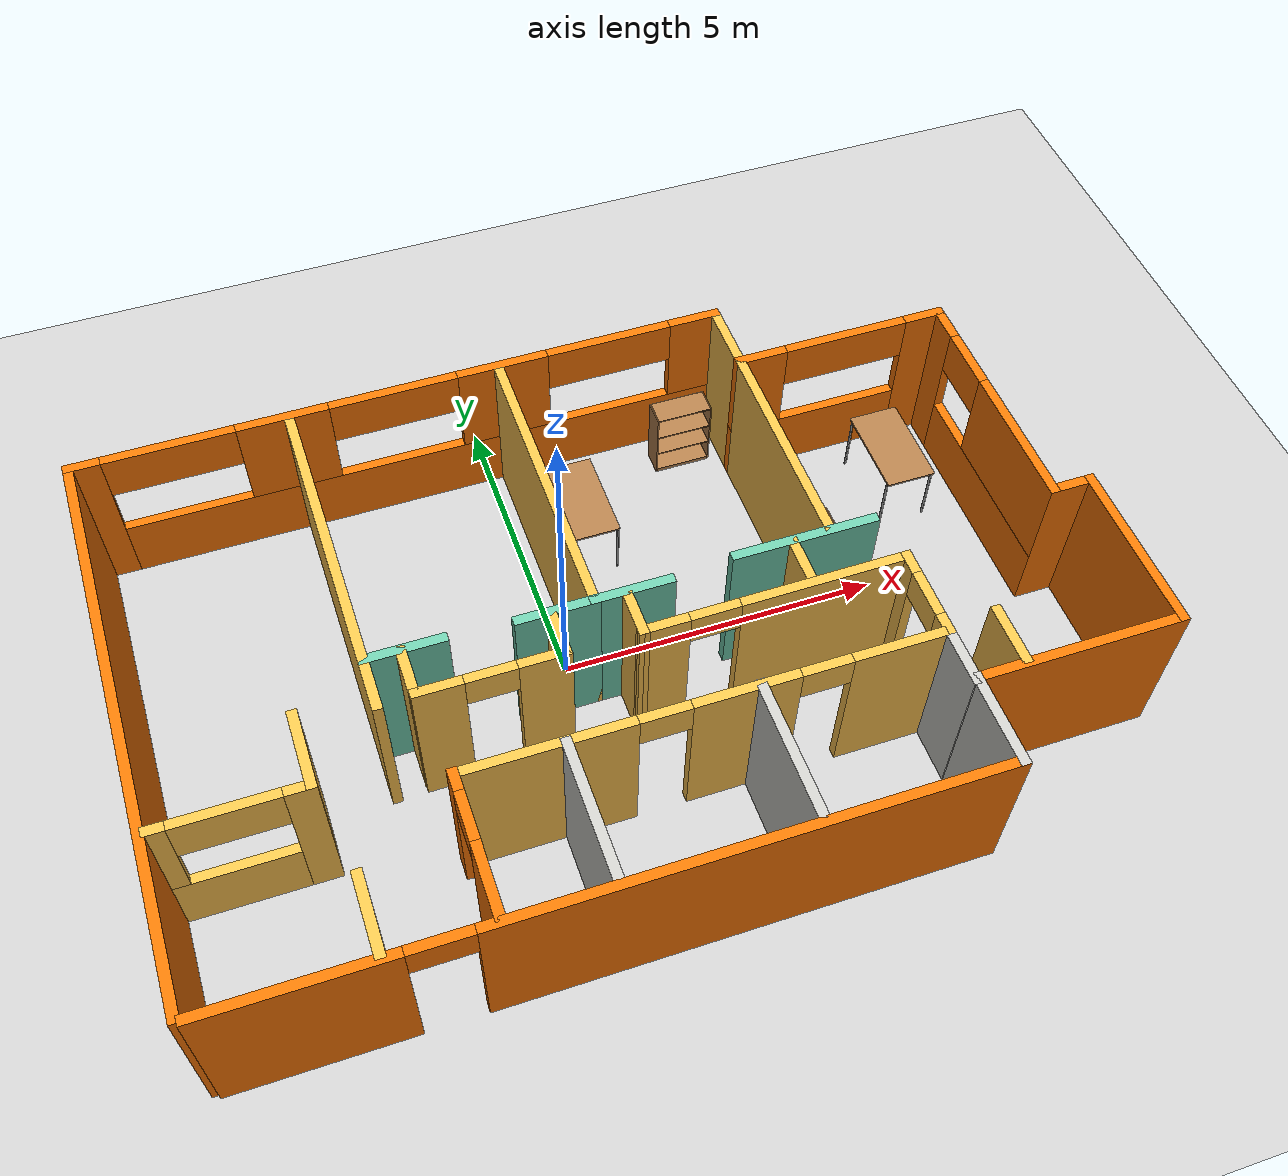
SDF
<sdf version="1.6">
 <world name="default">
  <model name="ground_plane">
   <static>1</static>
   <link name="link">
    <collision name="collision">
     <geometry><plane><normal>0 0 1</normal><size>100 100</size></plane></geometry>
     <surface>
      <contact><collide_bitmask>65535</collide_bitmask></contact>
      <friction><ode><mu>100</mu><mu2>50</mu2></ode></friction>
     </surface>
    </collision>
    <visual name="visual">
     <cast_shadows>0</cast_shadows>
     <geometry><plane><normal>0 0 1</normal><size>100 100</size></plane></geometry>
     <material>
      <script><uri>file://media/materials/scripts/gazebo.material</uri><name>Gazebo/Grey</name></script>
     </material>
    </visual>
   </link>
  </model>
  <model name="APT916_0">
   <pose>0.75832 -0.376555 0 0 -0 0</pose>
   <link name="Wall_14">
    <collision name="Wall_14_Collision">
     <geometry><box><size>9 0.15 2.5</size></box></geometry>
     <pose>0 0 1.25 0 -0 0</pose>
    </collision>
    <visual name="Wall_14_Visual">
     <pose>0 0 1.25 0 -0 0</pose>
     <geometry><box><size>9 0.15 2.5</size></box></geometry>
     <material>
      <script><uri>file://media/materials/scripts/gazebo.material</uri><name>Gazebo/Grey</name></script>
      <ambient>0.996078 0.47451 0.0196078 1</ambient>
     </material>
     <meta><layer>0</layer></meta>
    </visual>
    <pose>-7.025 0.025 0 0 0 -1.5708</pose>
   </link>
   <link name="Wall_16">
    <collision name="Wall_16_Collision">
     <geometry><box><size>5.5 0.15 2.5</size></box></geometry>
     <pose>0 0 1.25 0 -0 0</pose>
    </collision>
    <visual name="Wall_16_Visual">
     <pose>0 0 1.25 0 -0 0</pose>
     <geometry><box><size>5.5 0.15 2.5</size></box></geometry>
     <material>
      <script><uri>file://media/materials/scripts/gazebo.material</uri><name>Gazebo/Grey</name></script>
      <ambient>1 0.764706 0.305882 1</ambient>
     </material>
     <meta><layer>0</layer></meta>
    </visual>
    <pose>-3.747 1.703 0 0 0 -1.5708</pose>
   </link>
   <link name="Wall_18">
    <collision name="Wall_18_Collision">
     <geometry><box><size>1.25 0.15 2.5</size></box></geometry>
     <pose>0 0 1.25 0 -0 0</pose>
    </collision>
    <visual name="Wall_18_Visual">
     <pose>0 0 1.25 0 -0 0</pose>
     <geometry><box><size>1.25 0.15 2.5</size></box></geometry>
     <material>
      <script><uri>file://media/materials/scripts/gazebo.material</uri><name>Gazebo/Grey</name></script>
      <ambient>1 0.764706 0.305882 1</ambient>
     </material>
     <meta><layer>0</layer></meta>
    </visual>
    <pose>-4.824 -1.31 0 0 0 -1.5708</pose>
   </link>
   <link name="Wall_19">
    <pose>-5.874 -1.86 0 0 -0 3.14159</pose>
    <visual name="Wall_19_Visual_0">
     <pose>-0.90386 0 1.25 0 -0 0</pose>
     <geometry><box><size>0.442281 0.15 2.5</size></box></geometry>
     <material>
      <script><uri>file://media/materials/scripts/gazebo.material</uri><name>Gazebo/Grey</name></script>
      <ambient>1 0.764706 0.305882 1</ambient>
     </material>
     <meta><layer>0</layer></meta>
    </visual>
    <collision name="Wall_19_Collision_0">
     <geometry><box><size>0.442281 0.15 2.5</size></box></geometry>
     <pose>-0.90386 0 1.25 0 -0 0</pose>
    </collision>
    <visual name="Wall_19_Visual_1">
     <pose>0.22114 0 0.5 0 -0 0</pose>
     <geometry><box><size>1.80772 0.15 1</size></box></geometry>
     <material>
      <script><uri>file://media/materials/scripts/gazebo.material</uri><name>Gazebo/Grey</name></script>
      <ambient>1 0.764706 0.305882 1</ambient>
     </material>
     <meta><layer>0</layer></meta>
    </visual>
    <collision name="Wall_19_Collision_1">
     <geometry><box><size>1.80772 0.15 1</size></box></geometry>
     <pose>0.22114 0 0.5 0 -0 0</pose>
    </collision>
    <visual name="Wall_19_Visual_2">
     <pose>0.97114 0 1.75 0 -0 0</pose>
     <geometry><box><size>0.307719 0.15 1.5</size></box></geometry>
     <material>
      <script><uri>file://media/materials/scripts/gazebo.material</uri><name>Gazebo/Grey</name></script>
      <ambient>1 0.764706 0.305882 1</ambient>
     </material>
     <meta><layer>0</layer></meta>
    </visual>
    <collision name="Wall_19_Collision_2">
     <geometry><box><size>0.307719 0.15 1.5</size></box></geometry>
     <pose>0.97114 0 1.75 0 -0 0</pose>
    </collision>
    <visual name="Wall_19_Visual_3">
     <pose>0.067281 0 2.15 0 -0 0</pose>
     <geometry><box><size>1.5 0.15 0.7</size></box></geometry>
     <material>
      <script><uri>file://media/materials/scripts/gazebo.material</uri><name>Gazebo/Grey</name></script>
      <ambient>1 0.764706 0.305882 1</ambient>
     </material>
     <meta><layer>0</layer></meta>
    </visual>
    <collision name="Wall_19_Collision_3">
     <geometry><box><size>1.5 0.15 0.7</size></box></geometry>
     <pose>0.067281 0 2.15 0 -0 0</pose>
    </collision>
   </link>
   <link name="Wall_21">
    <collision name="Wall_21_Collision">
     <geometry><box><size>4.75 0.15 2.5</size></box></geometry>
     <pose>0 0 1.25 0 -0 0</pose>
    </collision>
    <visual name="Wall_21_Visual">
     <pose>0 0 1.25 0 -0 0</pose>
     <geometry><box><size>4.75 0.15 2.5</size></box></geometry>
     <material>
      <script><uri>file://media/materials/scripts/gazebo.material</uri><name>Gazebo/Grey</name></script>
      <ambient>1 0.764706 0.305882 1</ambient>
     </material>
     <meta><layer>0</layer></meta>
    </visual>
    <pose>-0.486 2.047 0 0 0 -1.5708</pose>
   </link>
   <link name="Wall_23">
    <collision name="Wall_23_Collision">
     <geometry><box><size>1.25 0.15 2.5</size></box></geometry>
     <pose>0 0 1.25 0 -0 0</pose>
    </collision>
    <visual name="Wall_23_Visual">
     <pose>0 0 1.25 0 -0 0</pose>
     <geometry><box><size>1.25 0.15 2.5</size></box></geometry>
     <material>
      <script><uri>file://media/materials/scripts/gazebo.material</uri><name>Gazebo/Grey</name></script>
      <ambient>0.435294 0.796078 0.67451 1</ambient>
     </material>
     <meta><layer>0</layer></meta>
    </visual>
    <pose>-3.19 -0.206 0 0 -0 3.14159</pose>
   </link>
   <link name="Wall_3">
    <pose>6.425 1.425 0 0 0 -1.5708</pose>
    <visual name="Wall_3_Visual_0">
     <pose>-1.67037 0 1.25 0 -0 0</pose>
     <geometry><box><size>0.659259 0.15 2.5</size></box></geometry>
     <material>
      <script><uri>file://media/materials/scripts/gazebo.material</uri><name>Gazebo/Grey</name></script>
      <ambient>0.996078 0.47451 0.0196078 1</ambient>
     </material>
     <meta><layer>0</layer></meta>
    </visual>
    <collision name="Wall_3_Collision_0">
     <geometry><box><size>0.659259 0.15 2.5</size></box></geometry>
     <pose>-1.67037 0 1.25 0 -0 0</pose>
    </collision>
    <visual name="Wall_3_Visual_1">
     <pose>0.329629 0 0.5 0 -0 0</pose>
     <geometry><box><size>3.34074 0.15 1</size></box></geometry>
     <material>
      <script><uri>file://media/materials/scripts/gazebo.material</uri><name>Gazebo/Grey</name></script>
      <ambient>0.996078 0.47451 0.0196078 1</ambient>
     </material>
     <meta><layer>0</layer></meta>
    </visual>
    <collision name="Wall_3_Collision_1">
     <geometry><box><size>3.34074 0.15 1</size></box></geometry>
     <pose>0.329629 0 0.5 0 -0 0</pose>
    </collision>
    <visual name="Wall_3_Visual_2">
     <pose>0.829629 0 1.75 0 -0 0</pose>
     <geometry><box><size>2.34074 0.15 1.5</size></box></geometry>
     <material>
      <script><uri>file://media/materials/scripts/gazebo.material</uri><name>Gazebo/Grey</name></script>
      <ambient>0.996078 0.47451 0.0196078 1</ambient>
     </material>
     <meta><layer>0</layer></meta>
    </visual>
    <collision name="Wall_3_Collision_2">
     <geometry><box><size>2.34074 0.15 1.5</size></box></geometry>
     <pose>0.829629 0 1.75 0 -0 0</pose>
    </collision>
    <visual name="Wall_3_Visual_3">
     <pose>-0.840741 0 2.15 0 -0 0</pose>
     <geometry><box><size>1 0.15 0.7</size></box></geometry>
     <material>
      <script><uri>file://media/materials/scripts/gazebo.material</uri><name>Gazebo/Grey</name></script>
      <ambient>0.996078 0.47451 0.0196078 1</ambient>
     </material>
     <meta><layer>0</layer></meta>
    </visual>
    <collision name="Wall_3_Collision_3">
     <geometry><box><size>1 0.15 0.7</size></box></geometry>
     <pose>-0.840741 0 2.15 0 -0 0</pose>
    </collision>
   </link>
   <link name="Wall_30">
    <collision name="Wall_30_Collision">
     <geometry><box><size>0.75 0.15 2.5</size></box></geometry>
     <pose>0 0 1.25 0 -0 0</pose>
    </collision>
    <visual name="Wall_30_Visual">
     <pose>0 0 1.25 0 -0 0</pose>
     <geometry><box><size>0.75 0.15 2.5</size></box></geometry>
     <material>
      <script><uri>file://media/materials/scripts/gazebo.material</uri><name>Gazebo/Grey</name></script>
      <ambient>1 0.764706 0.305882 1</ambient>
     </material>
     <meta><layer>0</layer></meta>
    </visual>
    <pose>-3.229 -0.53 0 0 -0 1.5708</pose>
   </link>
   <link name="Wall_32">
    <pose>-2.171 -0.947 0 0 -0 3.14159</pose>
    <visual name="Wall_32_Visual_0">
     <pose>-0.744745 0 1.25 0 -0 0</pose>
     <geometry><box><size>0.76051 0.15 2.5</size></box></geometry>
     <material>
      <script><uri>file://media/materials/scripts/gazebo.material</uri><name>Gazebo/Grey</name></script>
      <ambient>1 0.764706 0.305882 1</ambient>
     </material>
     <meta><layer>0</layer></meta>
    </visual>
    <collision name="Wall_32_Collision_0">
     <geometry><box><size>0.76051 0.15 2.5</size></box></geometry>
     <pose>-0.744745 0 1.25 0 -0 0</pose>
    </collision>
    <visual name="Wall_32_Visual_1">
     <pose>0.755255 0 1.25 0 -0 0</pose>
     <geometry><box><size>0.73949 0.15 2.5</size></box></geometry>
     <material>
      <script><uri>file://media/materials/scripts/gazebo.material</uri><name>Gazebo/Grey</name></script>
      <ambient>1 0.764706 0.305882 1</ambient>
     </material>
     <meta><layer>0</layer></meta>
    </visual>
    <collision name="Wall_32_Collision_1">
     <geometry><box><size>0.73949 0.15 2.5</size></box></geometry>
     <pose>0.755255 0 1.25 0 -0 0</pose>
    </collision>
    <visual name="Wall_32_Visual_2">
     <pose>0.01051 0 2.25 0 -0 0</pose>
     <geometry><box><size>0.75 0.15 0.5</size></box></geometry>
     <material>
      <script><uri>file://media/materials/scripts/gazebo.material</uri><name>Gazebo/Grey</name></script>
      <ambient>1 0.764706 0.305882 1</ambient>
     </material>
     <meta><layer>0</layer></meta>
    </visual>
    <collision name="Wall_32_Collision_2">
     <geometry><box><size>0.75 0.15 0.5</size></box></geometry>
     <pose>0.01051 0 2.25 0 -0 0</pose>
    </collision>
   </link>
   <link name="Wall_35">
    <collision name="Wall_35_Collision">
     <geometry><box><size>1.25 0.15 2.5</size></box></geometry>
     <pose>0 0 1.25 0 -0 0</pose>
    </collision>
    <visual name="Wall_35_Visual">
     <pose>0 0 1.25 0 -0 0</pose>
     <geometry><box><size>1.25 0.15 2.5</size></box></geometry>
     <material>
      <script><uri>file://media/materials/scripts/gazebo.material</uri><name>Gazebo/Grey</name></script>
      <ambient>0.435294 0.796078 0.67451 1</ambient>
     </material>
     <meta><layer>0</layer></meta>
    </visual>
    <pose>-1.036 -0.253 0 0 -0 3.14159</pose>
   </link>
   <link name="Wall_4">
    <collision name="Wall_4_Collision">
     <geometry><box><size>0.75 0.15 2.5</size></box></geometry>
     <pose>0 0 1.25 0 -0 0</pose>
    </collision>
    <visual name="Wall_4_Visual">
     <pose>0 0 1.25 0 -0 0</pose>
     <geometry><box><size>0.75 0.15 2.5</size></box></geometry>
     <material>
      <script><uri>file://media/materials/scripts/gazebo.material</uri><name>Gazebo/Grey</name></script>
      <ambient>0.996078 0.47451 0.0196078 1</ambient>
     </material>
     <meta><layer>0</layer></meta>
    </visual>
    <pose>6.725 -0.5 0 0 -0 0</pose>
   </link>
   <link name="Wall_42">
    <collision name="Wall_42_Collision">
     <geometry><box><size>1.25 0.15 2.5</size></box></geometry>
     <pose>0 0 1.25 0 -0 0</pose>
    </collision>
    <visual name="Wall_42_Visual">
     <pose>0 0 1.25 0 -0 0</pose>
     <geometry><box><size>1.25 0.15 2.5</size></box></geometry>
     <material>
      <script><uri>file://media/materials/scripts/gazebo.material</uri><name>Gazebo/Grey</name></script>
      <ambient>0.435294 0.796078 0.67451 1</ambient>
     </material>
     <meta><layer>0</layer></meta>
    </visual>
    <pose>0.064 -0.253 0 0 -0 3.14159</pose>
   </link>
   <link name="Wall_44">
    <collision name="Wall_44_Collision">
     <geometry><box><size>0.75 0.15 2.5</size></box></geometry>
     <pose>0 0 1.25 0 -0 0</pose>
    </collision>
    <visual name="Wall_44_Visual">
     <pose>0 0 1.25 0 -0 0</pose>
     <geometry><box><size>0.75 0.15 2.5</size></box></geometry>
     <material>
      <script><uri>file://media/materials/scripts/gazebo.material</uri><name>Gazebo/Grey</name></script>
      <ambient>1 0.764706 0.305882 1</ambient>
     </material>
     <meta><layer>0</layer></meta>
    </visual>
    <pose>-0.028 -0.652 0 0 0 -1.5708</pose>
   </link>
   <link name="Wall_5">
    <collision name="Wall_5_Collision">
     <geometry><box><size>2.75 0.15 2.5</size></box></geometry>
     <pose>0 0 1.25 0 -0 0</pose>
    </collision>
    <visual name="Wall_5_Visual">
     <pose>0 0 1.25 0 -0 0</pose>
     <geometry><box><size>2.75 0.15 2.5</size></box></geometry>
     <material>
      <script><uri>file://media/materials/scripts/gazebo.material</uri><name>Gazebo/Grey</name></script>
      <ambient>0.996078 0.47451 0.0196078 1</ambient>
     </material>
     <meta><layer>0</layer></meta>
    </visual>
    <pose>7.025 -1.8 0 0 0 -1.5708</pose>
   </link>
   <link name="Wall_51">
    <collision name="Wall_51_Collision">
     <geometry><box><size>2.25 0.15 2.5</size></box></geometry>
     <pose>0 0 1.25 0 -0 0</pose>
    </collision>
    <visual name="Wall_51_Visual">
     <pose>0 0 1.25 0 -0 0</pose>
     <geometry><box><size>2.25 0.15 2.5</size></box></geometry>
     <material>
      <script><uri>file://media/materials/scripts/gazebo.material</uri><name>Gazebo/Grey</name></script>
      <ambient>0.435294 0.796078 0.67451 1</ambient>
     </material>
     <meta><layer>0</layer></meta>
    </visual>
    <pose>2.684 -0.162 0 0 -0 0</pose>
   </link>
   <link name="Wall_53">
    <pose>-1.975 4.45 0 0 -0 0</pose>
    <visual name="Wall_53_Visual_0">
     <pose>-4.85383 0 1.25 0 -0 0</pose>
     <geometry><box><size>0.542348 0.15 2.5</size></box></geometry>
     <material>
      <script><uri>file://media/materials/scripts/gazebo.material</uri><name>Gazebo/Grey</name></script>
      <ambient>0.996078 0.47451 0.0196078 1</ambient>
     </material>
     <meta><layer>0</layer></meta>
    </visual>
    <collision name="Wall_53_Collision_0">
     <geometry><box><size>0.542348 0.15 2.5</size></box></geometry>
     <pose>-4.85383 0 1.25 0 -0 0</pose>
    </collision>
    <visual name="Wall_53_Visual_1">
     <pose>0.271174 0 0.5 0 -0 0</pose>
     <geometry><box><size>9.70765 0.15 1</size></box></geometry>
     <material>
      <script><uri>file://media/materials/scripts/gazebo.material</uri><name>Gazebo/Grey</name></script>
      <ambient>0.996078 0.47451 0.0196078 1</ambient>
     </material>
     <meta><layer>0</layer></meta>
    </visual>
    <collision name="Wall_53_Collision_1">
     <geometry><box><size>9.70765 0.15 1</size></box></geometry>
     <pose>0.271174 0 0.5 0 -0 0</pose>
    </collision>
    <visual name="Wall_53_Visual_2">
     <pose>-1.87284 0 1.75 0 -0 0</pose>
     <geometry><box><size>1.41962 0.15 1.5</size></box></geometry>
     <material>
      <script><uri>file://media/materials/scripts/gazebo.material</uri><name>Gazebo/Grey</name></script>
      <ambient>0.996078 0.47451 0.0196078 1</ambient>
     </material>
     <meta><layer>0</layer></meta>
    </visual>
    <collision name="Wall_53_Collision_2">
     <geometry><box><size>1.41962 0.15 1.5</size></box></geometry>
     <pose>-1.87284 0 1.75 0 -0 0</pose>
    </collision>
    <visual name="Wall_53_Visual_3">
     <pose>1.55835 0 1.75 0 -0 0</pose>
     <geometry><box><size>1.44277 0.15 1.5</size></box></geometry>
     <material>
      <script><uri>file://media/materials/scripts/gazebo.material</uri><name>Gazebo/Grey</name></script>
      <ambient>0.996078 0.47451 0.0196078 1</ambient>
     </material>
     <meta><layer>0</layer></meta>
    </visual>
    <collision name="Wall_53_Collision_3">
     <geometry><box><size>1.44277 0.15 1.5</size></box></geometry>
     <pose>1.55835 0 1.75 0 -0 0</pose>
    </collision>
    <visual name="Wall_53_Visual_4">
     <pose>4.70237 0 1.75 0 -0 0</pose>
     <geometry><box><size>0.845266 0.15 1.5</size></box></geometry>
     <material>
      <script><uri>file://media/materials/scripts/gazebo.material</uri><name>Gazebo/Grey</name></script>
      <ambient>0.996078 0.47451 0.0196078 1</ambient>
     </material>
     <meta><layer>0</layer></meta>
    </visual>
    <collision name="Wall_53_Collision_4">
     <geometry><box><size>0.845266 0.15 1.5</size></box></geometry>
     <pose>4.70237 0 1.75 0 -0 0</pose>
    </collision>
    <visual name="Wall_53_Visual_5">
     <pose>-3.58265 0 2.15 0 -0 0</pose>
     <geometry><box><size>2 0.15 0.7</size></box></geometry>
     <material>
      <script><uri>file://media/materials/scripts/gazebo.material</uri><name>Gazebo/Grey</name></script>
      <ambient>0.996078 0.47451 0.0196078 1</ambient>
     </material>
     <meta><layer>0</layer></meta>
    </visual>
    <collision name="Wall_53_Collision_5">
     <geometry><box><size>2 0.15 0.7</size></box></geometry>
     <pose>-3.58265 0 2.15 0 -0 0</pose>
    </collision>
    <visual name="Wall_53_Visual_6">
     <pose>-0.163033 0 2.15 0 -0 0</pose>
     <geometry><box><size>2 0.15 0.7</size></box></geometry>
     <material>
      <script><uri>file://media/materials/scripts/gazebo.material</uri><name>Gazebo/Grey</name></script>
      <ambient>0.996078 0.47451 0.0196078 1</ambient>
     </material>
     <meta><layer>0</layer></meta>
    </visual>
    <collision name="Wall_53_Collision_6">
     <geometry><box><size>2 0.15 0.7</size></box></geometry>
     <pose>-0.163033 0 2.15 0 -0 0</pose>
    </collision>
    <visual name="Wall_53_Visual_7">
     <pose>3.27973 0 2.15 0 -0 0</pose>
     <geometry><box><size>2 0.15 0.7</size></box></geometry>
     <material>
      <script><uri>file://media/materials/scripts/gazebo.material</uri><name>Gazebo/Grey</name></script>
      <ambient>0.996078 0.47451 0.0196078 1</ambient>
     </material>
     <meta><layer>0</layer></meta>
    </visual>
    <collision name="Wall_53_Collision_7">
     <geometry><box><size>2 0.15 0.7</size></box></geometry>
     <pose>3.27973 0 2.15 0 -0 0</pose>
    </collision>
   </link>
   <link name="Wall_54">
    <collision name="Wall_54_Collision">
     <geometry><box><size>4.75 0.15 2.5</size></box></geometry>
     <pose>0 0 1.25 0 -0 0</pose>
    </collision>
    <visual name="Wall_54_Visual">
     <pose>0 0 1.25 0 -0 0</pose>
     <geometry><box><size>4.75 0.15 2.5</size></box></geometry>
     <material>
      <script><uri>file://media/materials/scripts/gazebo.material</uri><name>Gazebo/Grey</name></script>
      <ambient>1 0.764706 0.305882 1</ambient>
     </material>
     <meta><layer>0</layer></meta>
    </visual>
    <pose>3.075 2.15 0 0 0 -1.5708</pose>
   </link>
   <link name="Wall_56">
    <pose>4.75 3.35 0 0 -0 3.14159</pose>
    <visual name="Wall_56_Visual_0">
     <pose>-1.41677 0 1.25 0 -0 0</pose>
     <geometry><box><size>0.666459 0.15 2.5</size></box></geometry>
     <material>
      <script><uri>file://media/materials/scripts/gazebo.material</uri><name>Gazebo/Grey</name></script>
      <ambient>0.996078 0.47451 0.0196078 1</ambient>
     </material>
     <meta><layer>0</layer></meta>
    </visual>
    <collision name="Wall_56_Collision_0">
     <geometry><box><size>0.666459 0.15 2.5</size></box></geometry>
     <pose>-1.41677 0 1.25 0 -0 0</pose>
    </collision>
    <visual name="Wall_56_Visual_1">
     <pose>0.333229 0 0.5 0 -0 0</pose>
     <geometry><box><size>2.83354 0.15 1</size></box></geometry>
     <material>
      <script><uri>file://media/materials/scripts/gazebo.material</uri><name>Gazebo/Grey</name></script>
      <ambient>0.996078 0.47451 0.0196078 1</ambient>
     </material>
     <meta><layer>0</layer></meta>
    </visual>
    <collision name="Wall_56_Collision_1">
     <geometry><box><size>2.83354 0.15 1</size></box></geometry>
     <pose>0.333229 0 0.5 0 -0 0</pose>
    </collision>
    <visual name="Wall_56_Visual_2">
     <pose>1.33323 0 1.75 0 -0 0</pose>
     <geometry><box><size>0.833541 0.15 1.5</size></box></geometry>
     <material>
      <script><uri>file://media/materials/scripts/gazebo.material</uri><name>Gazebo/Grey</name></script>
      <ambient>0.996078 0.47451 0.0196078 1</ambient>
     </material>
     <meta><layer>0</layer></meta>
    </visual>
    <collision name="Wall_56_Collision_2">
     <geometry><box><size>0.833541 0.15 1.5</size></box></geometry>
     <pose>1.33323 0 1.75 0 -0 0</pose>
    </collision>
    <visual name="Wall_56_Visual_3">
     <pose>-0.083541 0 2.15 0 -0 0</pose>
     <geometry><box><size>2 0.15 0.7</size></box></geometry>
     <material>
      <script><uri>file://media/materials/scripts/gazebo.material</uri><name>Gazebo/Grey</name></script>
      <ambient>0.996078 0.47451 0.0196078 1</ambient>
     </material>
     <meta><layer>0</layer></meta>
    </visual>
    <collision name="Wall_56_Collision_3">
     <geometry><box><size>2 0.15 0.7</size></box></geometry>
     <pose>-0.083541 0 2.15 0 -0 0</pose>
    </collision>
   </link>
   <link name="Wall_58">
    <collision name="Wall_58_Collision">
     <geometry><box><size>0.8 0.15 2.5</size></box></geometry>
     <pose>0 0 1.25 0 -0 0</pose>
    </collision>
    <visual name="Wall_58_Visual">
     <pose>0 0 1.25 0 -0 0</pose>
     <geometry><box><size>0.8 0.15 2.5</size></box></geometry>
     <material>
      <script><uri>file://media/materials/scripts/gazebo.material</uri><name>Gazebo/Grey</name></script>
      <ambient>1 0.764706 0.305882 1</ambient>
     </material>
     <meta><layer>0</layer></meta>
    </visual>
    <pose>2.486 -0.51 0 0 0 -1.5708</pose>
   </link>
   <link name="Wall_6">
    <collision name="Wall_6_Collision">
     <geometry><box><size>3.25 0.15 2.5</size></box></geometry>
     <pose>0 0 1.25 0 -0 0</pose>
    </collision>
    <visual name="Wall_6_Visual">
     <pose>0 0 1.25 0 -0 0</pose>
     <geometry><box><size>3.25 0.15 2.5</size></box></geometry>
     <material>
      <script><uri>file://media/materials/scripts/gazebo.material</uri><name>Gazebo/Grey</name></script>
      <ambient>0.996078 0.47451 0.0196078 1</ambient>
     </material>
     <meta><layer>0</layer></meta>
    </visual>
    <pose>5.475 -3.1 0 0 -0 3.14159</pose>
   </link>
   <link name="Wall_60">
    <collision name="Wall_60_Collision">
     <geometry><box><size>1.25 0.15 2.5</size></box></geometry>
     <pose>0 0 1.25 0 -0 0</pose>
    </collision>
    <visual name="Wall_60_Visual">
     <pose>0 0 1.25 0 -0 0</pose>
     <geometry><box><size>1.25 0.15 2.5</size></box></geometry>
     <material>
      <script><uri>file://media/materials/scripts/gazebo.material</uri><name>Gazebo/Grey</name></script>
      <ambient>1 0.764706 0.305882 1</ambient>
     </material>
     <meta><layer>0</layer></meta>
    </visual>
    <pose>-4.563 -3.832 0 0 -0 1.5708</pose>
   </link>
   <link name="Wall_63">
    <pose>0.371 -2.285 0 0 -0 0</pose>
    <visual name="Wall_63_Visual_0">
     <pose>-2.21806 0 1.25 0 -0 0</pose>
     <geometry><box><size>2.56389 0.15 2.5</size></box></geometry>
     <material>
      <script><uri>file://media/materials/scripts/gazebo.material</uri><name>Gazebo/Grey</name></script>
      <ambient>1 0.764706 0.305882 1</ambient>
     </material>
     <meta><layer>0</layer></meta>
    </visual>
    <collision name="Wall_63_Collision_0">
     <geometry><box><size>2.56389 0.15 2.5</size></box></geometry>
     <pose>-2.21806 0 1.25 0 -0 0</pose>
    </collision>
    <visual name="Wall_63_Visual_1">
     <pose>0.590236 0 1.25 0 -0 0</pose>
     <geometry><box><size>1.5527 0.15 2.5</size></box></geometry>
     <material>
      <script><uri>file://media/materials/scripts/gazebo.material</uri><name>Gazebo/Grey</name></script>
      <ambient>1 0.764706 0.305882 1</ambient>
     </material>
     <meta><layer>0</layer></meta>
    </visual>
    <collision name="Wall_63_Collision_1">
     <geometry><box><size>1.5527 0.15 2.5</size></box></geometry>
     <pose>0.590236 0 1.25 0 -0 0</pose>
    </collision>
    <visual name="Wall_63_Visual_2">
     <pose>2.80829 0 1.25 0 -0 0</pose>
     <geometry><box><size>1.38342 0.15 2.5</size></box></geometry>
     <material>
      <script><uri>file://media/materials/scripts/gazebo.material</uri><name>Gazebo/Grey</name></script>
      <ambient>1 0.764706 0.305882 1</ambient>
     </material>
     <meta><layer>0</layer></meta>
    </visual>
    <collision name="Wall_63_Collision_2">
     <geometry><box><size>1.38342 0.15 2.5</size></box></geometry>
     <pose>2.80829 0 1.25 0 -0 0</pose>
    </collision>
    <visual name="Wall_63_Visual_3">
     <pose>-0.561112 0 2.25 0 -0 0</pose>
     <geometry><box><size>0.75 0.15 0.5</size></box></geometry>
     <material>
      <script><uri>file://media/materials/scripts/gazebo.material</uri><name>Gazebo/Grey</name></script>
      <ambient>1 0.764706 0.305882 1</ambient>
     </material>
     <meta><layer>0</layer></meta>
    </visual>
    <collision name="Wall_63_Collision_3">
     <geometry><box><size>0.75 0.15 0.5</size></box></geometry>
     <pose>-0.561112 0 2.25 0 -0 0</pose>
    </collision>
    <visual name="Wall_63_Visual_4">
     <pose>1.74158 0 2.25 0 -0 0</pose>
     <geometry><box><size>0.75 0.15 0.5</size></box></geometry>
     <material>
      <script><uri>file://media/materials/scripts/gazebo.material</uri><name>Gazebo/Grey</name></script>
      <ambient>1 0.764706 0.305882 1</ambient>
     </material>
     <meta><layer>0</layer></meta>
    </visual>
    <collision name="Wall_63_Collision_4">
     <geometry><box><size>0.75 0.15 0.5</size></box></geometry>
     <pose>1.74158 0 2.25 0 -0 0</pose>
    </collision>
   </link>
   <link name="Wall_66">
    <pose>-3.07 -3.324 0 0 -0 1.5708</pose>
    <visual name="Wall_66_Visual_0">
     <pose>-0.549177 0 1.25 0 -0 0</pose>
     <geometry><box><size>1.15165 0.15 2.5</size></box></geometry>
     <material>
      <script><uri>file://media/materials/scripts/gazebo.material</uri><name>Gazebo/Grey</name></script>
      <ambient>0.996078 0.47451 0.0196078 1</ambient>
     </material>
     <meta><layer>0</layer></meta>
    </visual>
    <collision name="Wall_66_Collision_0">
     <geometry><box><size>1.15165 0.15 2.5</size></box></geometry>
     <pose>-0.549177 0 1.25 0 -0 0</pose>
    </collision>
    <visual name="Wall_66_Visual_1">
     <pose>0.950823 0 1.25 0 -0 0</pose>
     <geometry><box><size>0.348354 0.15 2.5</size></box></geometry>
     <material>
      <script><uri>file://media/materials/scripts/gazebo.material</uri><name>Gazebo/Grey</name></script>
      <ambient>0.996078 0.47451 0.0196078 1</ambient>
     </material>
     <meta><layer>0</layer></meta>
    </visual>
    <collision name="Wall_66_Collision_1">
     <geometry><box><size>0.348354 0.15 2.5</size></box></geometry>
     <pose>0.950823 0 1.25 0 -0 0</pose>
    </collision>
    <visual name="Wall_66_Visual_2">
     <pose>0.401646 0 2.25 0 -0 0</pose>
     <geometry><box><size>0.75 0.15 0.5</size></box></geometry>
     <material>
      <script><uri>file://media/materials/scripts/gazebo.material</uri><name>Gazebo/Grey</name></script>
      <ambient>0.996078 0.47451 0.0196078 1</ambient>
     </material>
     <meta><layer>0</layer></meta>
    </visual>
    <collision name="Wall_66_Collision_2">
     <geometry><box><size>0.75 0.15 0.5</size></box></geometry>
     <pose>0.401646 0 2.25 0 -0 0</pose>
    </collision>
   </link>
   <link name="Wall_68">
    <collision name="Wall_68_Collision">
     <geometry><box><size>1 0.15 2.5</size></box></geometry>
     <pose>0 0 1.25 0 -0 0</pose>
    </collision>
    <visual name="Wall_68_Visual">
     <pose>0 0 1.25 0 -0 0</pose>
     <geometry><box><size>1 0.15 2.5</size></box></geometry>
     <material>
      <script><uri>file://media/materials/scripts/gazebo.material</uri><name>Gazebo/Grey</name></script>
      <ambient>1 0.764706 0.305882 1</ambient>
     </material>
     <meta><layer>0</layer></meta>
    </visual>
    <pose>4.676 -2.615 0 0 0 -1.5708</pose>
   </link>
   <link name="Wall_7">
    <collision name="Wall_7_Collision">
     <geometry><box><size>1.5 0.15 2.5</size></box></geometry>
     <pose>0 0 1.25 0 -0 0</pose>
    </collision>
    <visual name="Wall_7_Visual">
     <pose>0 0 1.25 0 -0 0</pose>
     <geometry><box><size>1.5 0.15 2.5</size></box></geometry>
     <material>
      <script><uri>file://media/materials/scripts/gazebo.material</uri><name>Gazebo/CeilingTiled</name></script>
      <ambient>1 1 1 1</ambient>
     </material>
     <meta><layer>0</layer></meta>
    </visual>
    <pose>3.925 -3.775 0 0 0 -1.5708</pose>
   </link>
   <link name="Wall_71">
    <collision name="Wall_71_Collision">
     <geometry><box><size>1 0.15 2.5</size></box></geometry>
     <pose>0 0 1.25 0 -0 0</pose>
    </collision>
    <visual name="Wall_71_Visual">
     <pose>0 0 1.25 0 -0 0</pose>
     <geometry><box><size>1 0.15 2.5</size></box></geometry>
     <material>
      <script><uri>file://media/materials/scripts/gazebo.material</uri><name>Gazebo/CeilingTiled</name></script>
      <ambient>1 1 1 1</ambient>
     </material>
     <meta><layer>0</layer></meta>
    </visual>
    <pose>3.906 -2.705 0 0 0 -1.5708</pose>
   </link>
   <link name="Wall_73">
    <collision name="Wall_73_Collision">
     <geometry><box><size>0.75 0.15 2.5</size></box></geometry>
     <pose>0 0 1.25 0 -0 0</pose>
    </collision>
    <visual name="Wall_73_Visual">
     <pose>0 0 1.25 0 -0 0</pose>
     <geometry><box><size>0.75 0.15 2.5</size></box></geometry>
     <material>
      <script><uri>file://media/materials/scripts/gazebo.material</uri><name>Gazebo/Grey</name></script>
      <ambient>1 0.764706 0.305882 1</ambient>
     </material>
     <meta><layer>0</layer></meta>
    </visual>
    <pose>-1.121 -0.647 0 0 -0 1.5708</pose>
   </link>
   <link name="Wall_77">
    <pose>3.906 -1.605 0 0 -0 1.5708</pose>
    <visual name="Wall_77_Visual_0">
     <pose>-0.570824 0 1.25 0 -0 0</pose>
     <geometry><box><size>0.358352 0.15 2.5</size></box></geometry>
     <material>
      <script><uri>file://media/materials/scripts/gazebo.material</uri><name>Gazebo/Grey</name></script>
      <ambient>1 0.764706 0.305882 1</ambient>
     </material>
     <meta><layer>0</layer></meta>
    </visual>
    <collision name="Wall_77_Collision_0">
     <geometry><box><size>0.358352 0.15 2.5</size></box></geometry>
     <pose>-0.570824 0 1.25 0 -0 0</pose>
    </collision>
    <visual name="Wall_77_Visual_1">
     <pose>0.554176 0 1.25 0 -0 0</pose>
     <geometry><box><size>0.391648 0.15 2.5</size></box></geometry>
     <material>
      <script><uri>file://media/materials/scripts/gazebo.material</uri><name>Gazebo/Grey</name></script>
      <ambient>1 0.764706 0.305882 1</ambient>
     </material>
     <meta><layer>0</layer></meta>
    </visual>
    <collision name="Wall_77_Collision_1">
     <geometry><box><size>0.391648 0.15 2.5</size></box></geometry>
     <pose>0.554176 0 1.25 0 -0 0</pose>
    </collision>
    <visual name="Wall_77_Visual_2">
     <pose>-0.016648 0 2.25 0 -0 0</pose>
     <geometry><box><size>0.75 0.15 0.5</size></box></geometry>
     <material>
      <script><uri>file://media/materials/scripts/gazebo.material</uri><name>Gazebo/Grey</name></script>
      <ambient>1 0.764706 0.305882 1</ambient>
     </material>
     <meta><layer>0</layer></meta>
    </visual>
    <collision name="Wall_77_Collision_2">
     <geometry><box><size>0.75 0.15 0.5</size></box></geometry>
     <pose>-0.016648 0 2.25 0 -0 0</pose>
    </collision>
   </link>
   <link name="Wall_78">
    <pose>1.939 -0.941 0 0 0 -3.136</pose>
    <visual name="Wall_78_Visual_0">
     <pose>-0.750321 0 1.25 0 -0 0</pose>
     <geometry><box><size>2.58332 0.15 2.5</size></box></geometry>
     <material>
      <script><uri>file://media/materials/scripts/gazebo.material</uri><name>Gazebo/Grey</name></script>
      <ambient>1 0.764706 0.305882 1</ambient>
     </material>
     <meta><layer>0</layer></meta>
    </visual>
    <collision name="Wall_78_Collision_0">
     <geometry><box><size>2.58332 0.15 2.5</size></box></geometry>
     <pose>-0.750321 0 1.25 0 -0 0</pose>
    </collision>
    <visual name="Wall_78_Visual_1">
     <pose>1.66666 0 1.25 0 -0 0</pose>
     <geometry><box><size>0.750642 0.15 2.5</size></box></geometry>
     <material>
      <script><uri>file://media/materials/scripts/gazebo.material</uri><name>Gazebo/Grey</name></script>
      <ambient>1 0.764706 0.305882 1</ambient>
     </material>
     <meta><layer>0</layer></meta>
    </visual>
    <collision name="Wall_78_Collision_1">
     <geometry><box><size>0.750642 0.15 2.5</size></box></geometry>
     <pose>1.66666 0 1.25 0 -0 0</pose>
    </collision>
    <visual name="Wall_78_Visual_2">
     <pose>0.91634 0 2.25 0 -0 0</pose>
     <geometry><box><size>0.75 0.15 0.5</size></box></geometry>
     <material>
      <script><uri>file://media/materials/scripts/gazebo.material</uri><name>Gazebo/Grey</name></script>
      <ambient>1 0.764706 0.305882 1</ambient>
     </material>
     <meta><layer>0</layer></meta>
    </visual>
    <collision name="Wall_78_Collision_2">
     <geometry><box><size>0.75 0.15 0.5</size></box></geometry>
     <pose>0.91634 0 2.25 0 -0 0</pose>
    </collision>
   </link>
   <link name="Wall_8">
    <pose>-1.5 -4.45 0 0 -0 3.14159</pose>
    <visual name="Wall_8_Visual_0">
     <pose>-1.80553 0 1.25 0 -0 0</pose>
     <geometry><box><size>7.38895 0.15 2.5</size></box></geometry>
     <material>
      <script><uri>file://media/materials/scripts/gazebo.material</uri><name>Gazebo/Grey</name></script>
      <ambient>0.996078 0.47451 0.0196078 1</ambient>
     </material>
     <meta><layer>0</layer></meta>
    </visual>
    <collision name="Wall_8_Collision_0">
     <geometry><box><size>7.38895 0.15 2.5</size></box></geometry>
     <pose>-1.80553 0 1.25 0 -0 0</pose>
    </collision>
    <visual name="Wall_8_Visual_1">
     <pose>4.14447 0 1.25 0 -0 0</pose>
     <geometry><box><size>2.71105 0.15 2.5</size></box></geometry>
     <material>
      <script><uri>file://media/materials/scripts/gazebo.material</uri><name>Gazebo/Grey</name></script>
      <ambient>0.996078 0.47451 0.0196078 1</ambient>
     </material>
     <meta><layer>0</layer></meta>
    </visual>
    <collision name="Wall_8_Collision_1">
     <geometry><box><size>2.71105 0.15 2.5</size></box></geometry>
     <pose>4.14447 0 1.25 0 -0 0</pose>
    </collision>
    <visual name="Wall_8_Visual_2">
     <pose>2.33895 0 2.25 0 -0 0</pose>
     <geometry><box><size>0.9 0.15 0.5</size></box></geometry>
     <material>
      <script><uri>file://media/materials/scripts/gazebo.material</uri><name>Gazebo/Grey</name></script>
      <ambient>0.996078 0.47451 0.0196078 1</ambient>
     </material>
     <meta><layer>0</layer></meta>
    </visual>
    <collision name="Wall_8_Collision_2">
     <geometry><box><size>0.9 0.15 0.5</size></box></geometry>
     <pose>2.33895 0 2.25 0 -0 0</pose>
    </collision>
   </link>
   <link name="Wall_80">
    <collision name="Wall_80_Collision">
     <geometry><box><size>2.25 0.15 2.5</size></box></geometry>
     <pose>0 0 1.25 0 -0 0</pose>
    </collision>
    <visual name="Wall_80_Visual">
     <pose>0 0 1.25 0 -0 0</pose>
     <geometry><box><size>2.25 0.15 2.5</size></box></geometry>
     <material>
      <script><uri>file://media/materials/scripts/gazebo.material</uri><name>Gazebo/CeilingTiled</name></script>
      <ambient>1 1 1 1</ambient>
     </material>
     <meta><layer>0</layer></meta>
    </visual>
    <pose>-1.55027 -3.3569 0 0 0 -1.5708</pose>
   </link>
   <link name="Wall_82">
    <collision name="Wall_82_Collision">
     <geometry><box><size>2.25 0.15 2.5</size></box></geometry>
     <pose>0 0 1.25 0 -0 0</pose>
    </collision>
    <visual name="Wall_82_Visual">
     <pose>0 0 1.25 0 -0 0</pose>
     <geometry><box><size>2.25 0.15 2.5</size></box></geometry>
     <material>
      <script><uri>file://media/materials/scripts/gazebo.material</uri><name>Gazebo/CeilingTiled</name></script>
      <ambient>1 1 1 1</ambient>
     </material>
     <meta><layer>0</layer></meta>
    </visual>
    <pose>1.1711 -3.32699 0 0 0 -1.5708</pose>
   </link>
   <static>1</static>
  </model>
  <model name="table">
   <static>1</static>
   <link name="link">
    <collision name="surface">
     <pose>0 0 1 0 -0 0</pose>
     <geometry><box><size>1.5 0.8 0.03</size></box></geometry>
     <surface><friction><ode><mu>0.6</mu><mu2>0.6</mu2></ode></friction></surface>
    </collision>
    <visual name="visual1">
     <pose>0 0 1 0 -0 0</pose>
     <geometry><box><size>1.5 0.8 0.03</size></box></geometry>
     <material>
      <script><uri>file://media/materials/scripts/gazebo.material</uri><name>Gazebo/Wood</name></script>
     </material>
    </visual>
    <collision name="front_left_leg">
     <pose>0.68 0.38 0.5 0 -0 0</pose>
     <geometry><cylinder><radius>0.02</radius><length>1</length></cylinder></geometry>
    </collision>
    <visual name="front_left_leg">
     <pose>0.68 0.38 0.5 0 -0 0</pose>
     <geometry><cylinder><radius>0.02</radius><length>1</length></cylinder></geometry>
     <material>
      <script><uri>file://media/materials/scripts/gazebo.material</uri><name>Gazebo/Grey</name></script>
     </material>
    </visual>
    <collision name="front_right_leg">
     <pose>0.68 -0.38 0.5 0 -0 0</pose>
     <geometry><cylinder><radius>0.02</radius><length>1</length></cylinder></geometry>
    </collision>
    <visual name="front_right_leg">
     <pose>0.68 -0.38 0.5 0 -0 0</pose>
     <geometry><cylinder><radius>0.02</radius><length>1</length></cylinder></geometry>
     <material>
      <script><uri>file://media/materials/scripts/gazebo.material</uri><name>Gazebo/Grey</name></script>
     </material>
    </visual>
    <collision name="back_right_leg">
     <pose>-0.68 -0.38 0.5 0 -0 0</pose>
     <geometry><cylinder><radius>0.02</radius><length>1</length></cylinder></geometry>
    </collision>
    <visual name="back_right_leg">
     <pose>-0.68 -0.38 0.5 0 -0 0</pose>
     <geometry><cylinder><radius>0.02</radius><length>1</length></cylinder></geometry>
     <material>
      <script><uri>file://media/materials/scripts/gazebo.material</uri><name>Gazebo/Grey</name></script>
     </material>
    </visual>
    <collision name="back_left_leg">
     <pose>-0.68 0.38 0.5 0 -0 0</pose>
     <geometry><cylinder><radius>0.02</radius><length>1</length></cylinder></geometry>
    </collision>
    <visual name="back_left_leg">
     <pose>-0.68 0.38 0.5 0 -0 0</pose>
     <geometry><cylinder><radius>0.02</radius><length>1</length></cylinder></geometry>
     <material>
      <script><uri>file://media/materials/scripts/gazebo.material</uri><name>Gazebo/Grey</name></script>
     </material>
    </visual>
   </link>
   <pose>6.08075 1.78031 0 0 -0 1.57</pose>
  </model>
  <model name="table_clone_0">
   <static>1</static>
   <link name="link">
    <collision name="surface">
     <pose>0 0 1 0 -0 0</pose>
     <geometry><box><size>1.5 0.8 0.03</size></box></geometry>
     <surface><friction><ode><mu>0.6</mu><mu2>0.6</mu2></ode></friction></surface>
    </collision>
    <visual name="visual1">
     <pose>0 0 1 0 -0 0</pose>
     <geometry><box><size>1.5 0.8 0.03</size></box></geometry>
     <material>
      <script><uri>file://media/materials/scripts/gazebo.material</uri><name>Gazebo/Wood</name></script>
     </material>
    </visual>
    <collision name="front_left_leg">
     <pose>0.68 0.38 0.5 0 -0 0</pose>
     <geometry><cylinder><radius>0.02</radius><length>1</length></cylinder></geometry>
    </collision>
    <visual name="front_left_leg">
     <pose>0.68 0.38 0.5 0 -0 0</pose>
     <geometry><cylinder><radius>0.02</radius><length>1</length></cylinder></geometry>
     <material>
      <script><uri>file://media/materials/scripts/gazebo.material</uri><name>Gazebo/Grey</name></script>
     </material>
    </visual>
    <collision name="front_right_leg">
     <pose>0.68 -0.38 0.5 0 -0 0</pose>
     <geometry><cylinder><radius>0.02</radius><length>1</length></cylinder></geometry>
    </collision>
    <visual name="front_right_leg">
     <pose>0.68 -0.38 0.5 0 -0 0</pose>
     <geometry><cylinder><radius>0.02</radius><length>1</length></cylinder></geometry>
     <material>
      <script><uri>file://media/materials/scripts/gazebo.material</uri><name>Gazebo/Grey</name></script>
     </material>
    </visual>
    <collision name="back_right_leg">
     <pose>-0.68 -0.38 0.5 0 -0 0</pose>
     <geometry><cylinder><radius>0.02</radius><length>1</length></cylinder></geometry>
    </collision>
    <visual name="back_right_leg">
     <pose>-0.68 -0.38 0.5 0 -0 0</pose>
     <geometry><cylinder><radius>0.02</radius><length>1</length></cylinder></geometry>
     <material>
      <script><uri>file://media/materials/scripts/gazebo.material</uri><name>Gazebo/Grey</name></script>
     </material>
    </visual>
    <collision name="back_left_leg">
     <pose>-0.68 0.38 0.5 0 -0 0</pose>
     <geometry><cylinder><radius>0.02</radius><length>1</length></cylinder></geometry>
    </collision>
    <visual name="back_left_leg">
     <pose>-0.68 0.38 0.5 0 -0 0</pose>
     <geometry><cylinder><radius>0.02</radius><length>1</length></cylinder></geometry>
     <material>
      <script><uri>file://media/materials/scripts/gazebo.material</uri><name>Gazebo/Grey</name></script>
     </material>
    </visual>
   </link>
   <pose>1.01497 2.31628 0 0 -0 1.57</pose>
  </model>
  <model name="bookshelf">
   <static>1</static>
   <link name="link">
    <inertial><mass>1</mass></inertial>
    <collision name="back">
     <pose>0 0.005 0.6 0 -0 0</pose>
     <geometry><box><size>0.9 0.01 1.2</size></box></geometry>
    </collision>
    <visual name="visual1">
     <pose>0 0.005 0.6 0 -0 0</pose>
     <geometry><box><size>0.9 0.01 1.2</size></box></geometry>
     <material>
      <script><uri>file://media/materials/scripts/gazebo.material</uri><name>Gazebo/Wood</name></script>
     </material>
    </visual>
    <collision name="left_side">
     <pose>0.45 -0.195 0.6 0 -0 0</pose>
     <geometry><box><size>0.02 0.4 1.2</size></box></geometry>
    </collision>
    <visual name="visual2">
     <pose>0.45 -0.195 0.6 0 -0 0</pose>
     <geometry><box><size>0.02 0.4 1.2</size></box></geometry>
     <material>
      <script><uri>file://media/materials/scripts/gazebo.material</uri><name>Gazebo/Wood</name></script>
     </material>
    </visual>
    <collision name="right_side">
     <pose>-0.45 -0.195 0.6 0 -0 0</pose>
     <geometry><box><size>0.02 0.4 1.2</size></box></geometry>
    </collision>
    <visual name="visual3">
     <pose>-0.45 -0.195 0.6 0 -0 0</pose>
     <geometry><box><size>0.02 0.4 1.2</size></box></geometry>
     <material>
      <script><uri>file://media/materials/scripts/gazebo.material</uri><name>Gazebo/Wood</name></script>
     </material>
    </visual>
    <collision name="bottom">
     <pose>0 -0.195 0.03 0 -0 0</pose>
     <geometry><box><size>0.88 0.4 0.06</size></box></geometry>
    </collision>
    <visual name="visual4">
     <pose>0 -0.195 0.03 0 -0 0</pose>
     <geometry><box><size>0.88 0.4 0.06</size></box></geometry>
     <material>
      <script><uri>file://media/materials/scripts/gazebo.material</uri><name>Gazebo/Wood</name></script>
     </material>
    </visual>
    <collision name="top">
     <pose>0 -0.195 1.19 0 -0 0</pose>
     <geometry><box><size>0.88 0.4 0.02</size></box></geometry>
    </collision>
    <visual name="visual5">
     <pose>0 -0.195 1.19 0 -0 0</pose>
     <geometry><box><size>0.88 0.4 0.02</size></box></geometry>
     <material>
      <script><uri>file://media/materials/scripts/gazebo.material</uri><name>Gazebo/Wood</name></script>
     </material>
    </visual>
    <collision name="low_shelf">
     <pose>0 -0.195 0.43 0 -0 0</pose>
     <geometry><box><size>0.88 0.4 0.02</size></box></geometry>
    </collision>
    <visual name="visual6">
     <pose>0 -0.195 0.43 0 -0 0</pose>
     <geometry><box><size>0.88 0.4 0.02</size></box></geometry>
     <material>
      <script><uri>file://media/materials/scripts/gazebo.material</uri><name>Gazebo/Wood</name></script>
     </material>
    </visual>
    <collision name="high_shelf">
     <pose>0 -0.195 0.8 0 -0 0</pose>
     <geometry><box><size>0.88 0.4 0.02</size></box></geometry>
    </collision>
    <visual name="visual7">
     <pose>0 -0.195 0.8 0 -0 0</pose>
     <geometry><box><size>0.88 0.4 0.02</size></box></geometry>
     <material>
      <script><uri>file://media/materials/scripts/gazebo.material</uri><name>Gazebo/Wood</name></script>
     </material>
    </visual>
   </link>
   <pose>3.10362 3.68906 0 0 -0 0</pose>
  </model>
  <model name="bookshelf_1">
   <static>1</static>
   <link name="link">
    <inertial><mass>1</mass></inertial>
    <collision name="back">
     <pose>0 0.005 0.6 0 -0 0</pose>
     <geometry><box><size>0.9 0.01 1.2</size></box></geometry>
    </collision>
    <visual name="visual1">
     <pose>0 0.005 0.6 0 -0 0</pose>
     <geometry><box><size>0.9 0.01 1.2</size></box></geometry>
     <material>
      <script><uri>file://media/materials/scripts/gazebo.material</uri><name>Gazebo/Wood</name></script>
     </material>
    </visual>
    <collision name="left_side">
     <pose>0.45 -0.195 0.6 0 -0 0</pose>
     <geometry><box><size>0.02 0.4 1.2</size></box></geometry>
    </collision>
    <visual name="visual2">
     <pose>0.45 -0.195 0.6 0 -0 0</pose>
     <geometry><box><size>0.02 0.4 1.2</size></box></geometry>
     <material>
      <script><uri>file://media/materials/scripts/gazebo.material</uri><name>Gazebo/Wood</name></script>
     </material>
    </visual>
    <collision name="right_side">
     <pose>-0.45 -0.195 0.6 0 -0 0</pose>
     <geometry><box><size>0.02 0.4 1.2</size></box></geometry>
    </collision>
    <visual name="visual3">
     <pose>-0.45 -0.195 0.6 0 -0 0</pose>
     <geometry><box><size>0.02 0.4 1.2</size></box></geometry>
     <material>
      <script><uri>file://media/materials/scripts/gazebo.material</uri><name>Gazebo/Wood</name></script>
     </material>
    </visual>
    <collision name="bottom">
     <pose>0 -0.195 0.03 0 -0 0</pose>
     <geometry><box><size>0.88 0.4 0.06</size></box></geometry>
    </collision>
    <visual name="visual4">
     <pose>0 -0.195 0.03 0 -0 0</pose>
     <geometry><box><size>0.88 0.4 0.06</size></box></geometry>
     <material>
      <script><uri>file://media/materials/scripts/gazebo.material</uri><name>Gazebo/Wood</name></script>
     </material>
    </visual>
    <collision name="top">
     <pose>0 -0.195 1.19 0 -0 0</pose>
     <geometry><box><size>0.88 0.4 0.02</size></box></geometry>
    </collision>
    <visual name="visual5">
     <pose>0 -0.195 1.19 0 -0 0</pose>
     <geometry><box><size>0.88 0.4 0.02</size></box></geometry>
     <material>
      <script><uri>file://media/materials/scripts/gazebo.material</uri><name>Gazebo/Wood</name></script>
     </material>
    </visual>
    <collision name="low_shelf">
     <pose>0 -0.195 0.43 0 -0 0</pose>
     <geometry><box><size>0.88 0.4 0.02</size></box></geometry>
    </collision>
    <visual name="visual6">
     <pose>0 -0.195 0.43 0 -0 0</pose>
     <geometry><box><size>0.88 0.4 0.02</size></box></geometry>
     <material>
      <script><uri>file://media/materials/scripts/gazebo.material</uri><name>Gazebo/Wood</name></script>
     </material>
    </visual>
    <collision name="high_shelf">
     <pose>0 -0.195 0.8 0 -0 0</pose>
     <geometry><box><size>0.88 0.4 0.02</size></box></geometry>
    </collision>
    <visual name="visual7">
     <pose>0 -0.195 0.8 0 -0 0</pose>
     <geometry><box><size>0.88 0.4 0.02</size></box></geometry>
     <material>
      <script><uri>file://media/materials/scripts/gazebo.material</uri><name>Gazebo/Wood</name></script>
     </material>
    </visual>
   </link>
   <pose>4.49492 0.351304 0 0 0 -1.56329</pose>
  </model>
 </world>
</sdf>
